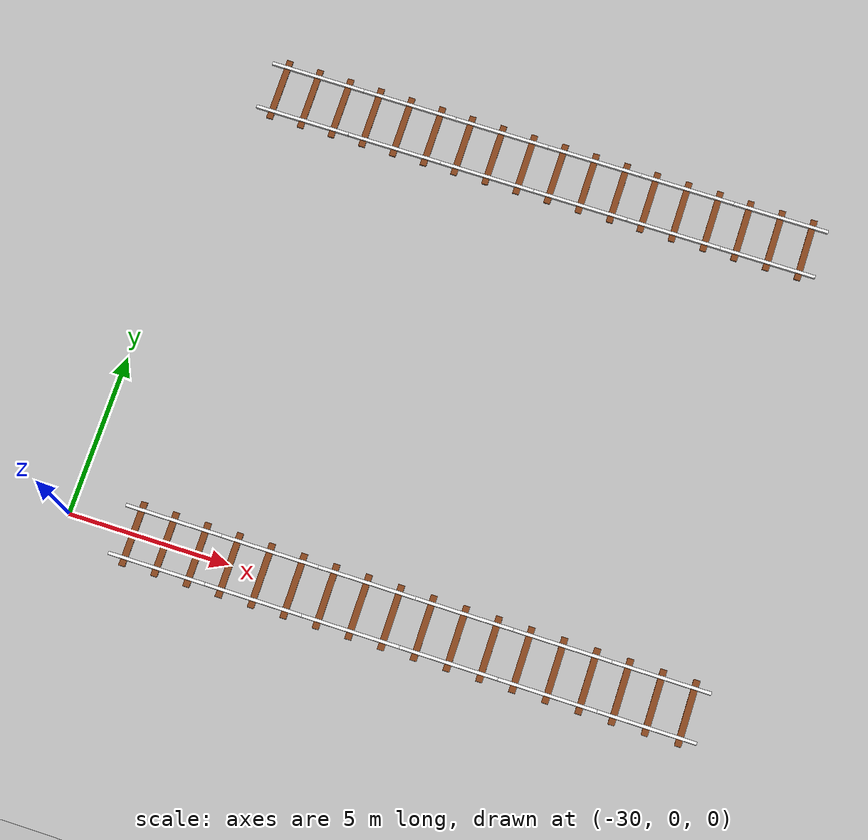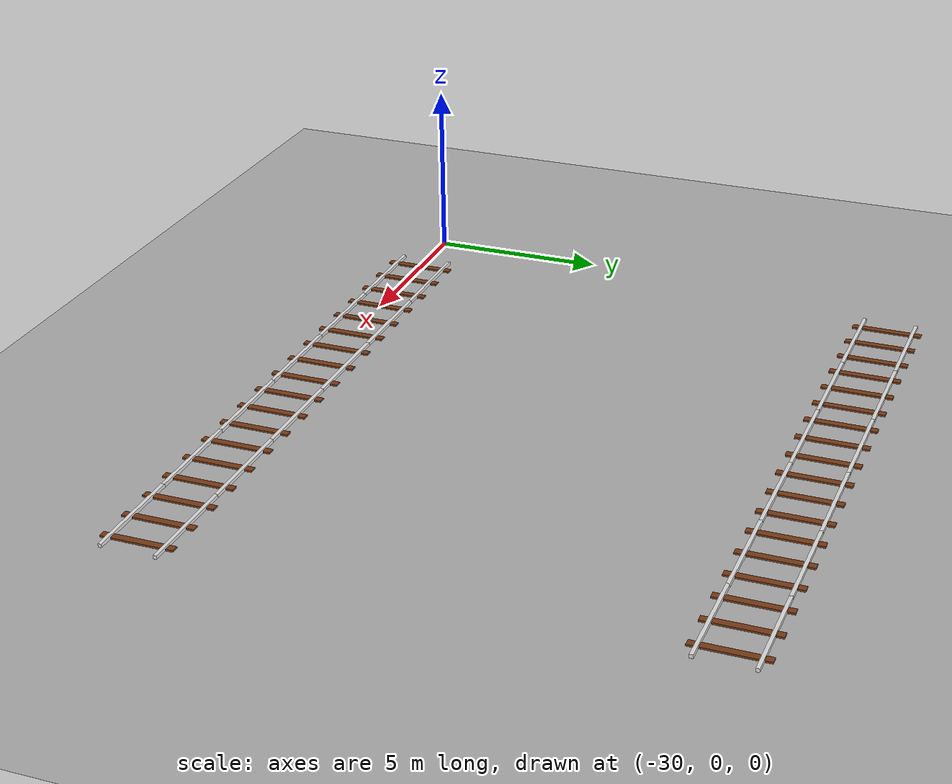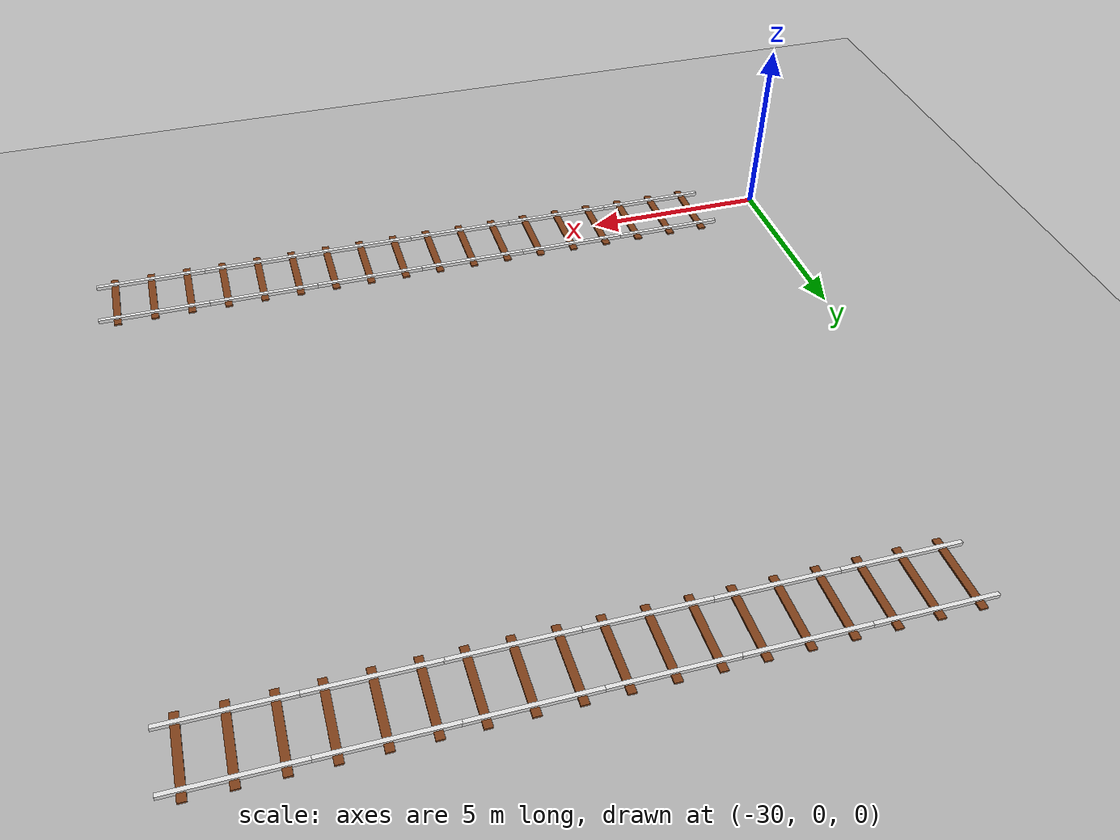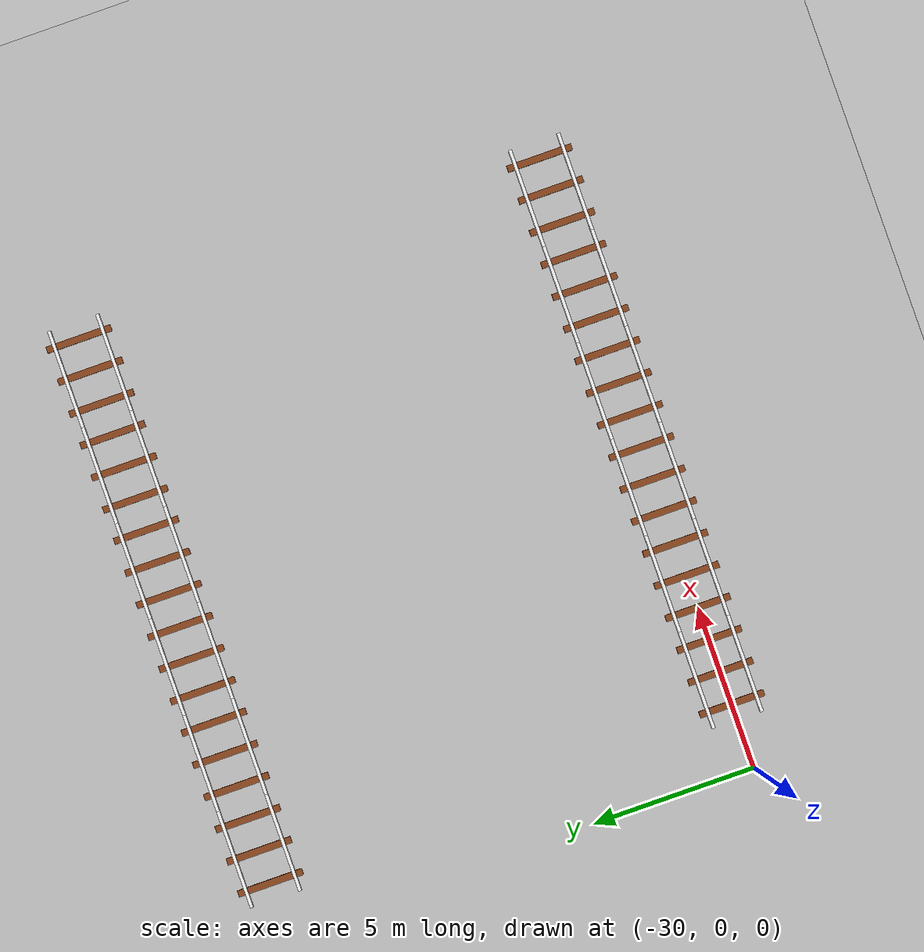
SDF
<sdf version="1.10">
 <world name="myworld">
  <model name="rail-5">
   <static>true</static>
   <pose>-12 0 0 0 0 0</pose>
   <link name="rail_link">
    <visual name="rail_left">
     <pose>0 0.75 0.050000000000000003 0 0 0</pose>
     <geometry><box><size>3 0.10000000000000001 0.10000000000000001</size></box></geometry>
     <material>
      <ambient>0.800000012 0.800000012 0.800000012 1</ambient>
      <diffuse>0.899999976 0.899999976 0.899999976 1</diffuse>
     </material>
    </visual>
    <visual name="rail_right">
     <pose>0 -0.75 0.050000000000000003 0 0 0</pose>
     <geometry><box><size>3 0.10000000000000001 0.10000000000000001</size></box></geometry>
     <material>
      <ambient>0.800000012 0.800000012 0.800000012 1</ambient>
      <diffuse>0.899999976 0.899999976 0.899999976 1</diffuse>
     </material>
    </visual>
    <visual name="traverse_1">
     <pose>1 0 0.025000000000000001 0 0 0</pose>
     <geometry><box><size>0.20000000000000001 2 0.050000000000000003</size></box></geometry>
     <material>
      <ambient>0.400000006 0.200000003 0.100000001 1</ambient>
      <diffuse>0.5 0.25 0.100000001 1</diffuse>
     </material>
    </visual>
    <visual name="traverse_2">
     <pose>0 0 0.025000000000000001 0 0 0</pose>
     <geometry><box><size>0.20000000000000001 2 0.050000000000000003</size></box></geometry>
     <material>
      <ambient>0.400000006 0.200000003 0.100000001 1</ambient>
      <diffuse>0.5 0.25 0.100000001 1</diffuse>
     </material>
    </visual>
    <visual name="traverse_3">
     <pose>-1 0 0.025000000000000001 0 0 0</pose>
     <geometry><box><size>0.20000000000000001 2 0.050000000000000003</size></box></geometry>
     <material>
      <ambient>0.400000006 0.200000003 0.100000001 1</ambient>
      <diffuse>0.5 0.25 0.100000001 1</diffuse>
     </material>
    </visual>
    <inertial>
     <mass>1</mass>
     <inertia><ixx>1</ixx><ixy>0</ixy><ixz>0</ixz><iyy>1</iyy><iyz>0</iyz><izz>1</izz></inertia>
    </inertial>
   </link>
  </model>
  <model name="rail-6">
   <static>true</static>
   <pose>-15 0 0 0 0 0</pose>
   <link name="rail_link">
    <visual name="rail_left">
     <pose>0 0.75 0.050000000000000003 0 0 0</pose>
     <geometry><box><size>3 0.10000000000000001 0.10000000000000001</size></box></geometry>
     <material>
      <ambient>0.800000012 0.800000012 0.800000012 1</ambient>
      <diffuse>0.899999976 0.899999976 0.899999976 1</diffuse>
     </material>
    </visual>
    <visual name="rail_right">
     <pose>0 -0.75 0.050000000000000003 0 0 0</pose>
     <geometry><box><size>3 0.10000000000000001 0.10000000000000001</size></box></geometry>
     <material>
      <ambient>0.800000012 0.800000012 0.800000012 1</ambient>
      <diffuse>0.899999976 0.899999976 0.899999976 1</diffuse>
     </material>
    </visual>
    <visual name="traverse_1">
     <pose>1 0 0.025000000000000001 0 0 0</pose>
     <geometry><box><size>0.20000000000000001 2 0.050000000000000003</size></box></geometry>
     <material>
      <ambient>0.400000006 0.200000003 0.100000001 1</ambient>
      <diffuse>0.5 0.25 0.100000001 1</diffuse>
     </material>
    </visual>
    <visual name="traverse_2">
     <pose>0 0 0.025000000000000001 0 0 0</pose>
     <geometry><box><size>0.20000000000000001 2 0.050000000000000003</size></box></geometry>
     <material>
      <ambient>0.400000006 0.200000003 0.100000001 1</ambient>
      <diffuse>0.5 0.25 0.100000001 1</diffuse>
     </material>
    </visual>
    <visual name="traverse_3">
     <pose>-1 0 0.025000000000000001 0 0 0</pose>
     <geometry><box><size>0.20000000000000001 2 0.050000000000000003</size></box></geometry>
     <material>
      <ambient>0.400000006 0.200000003 0.100000001 1</ambient>
      <diffuse>0.5 0.25 0.100000001 1</diffuse>
     </material>
    </visual>
    <inertial>
     <mass>1</mass>
     <inertia><ixx>1</ixx><ixy>0</ixy><ixz>0</ixz><iyy>1</iyy><iyz>0</iyz><izz>1</izz></inertia>
    </inertial>
   </link>
  </model>
  <model name="rail-7">
   <static>true</static>
   <pose>-18 0 0 0 0 0</pose>
   <link name="rail_link">
    <visual name="rail_left">
     <pose>0 0.75 0.050000000000000003 0 0 0</pose>
     <geometry><box><size>3 0.10000000000000001 0.10000000000000001</size></box></geometry>
     <material>
      <ambient>0.800000012 0.800000012 0.800000012 1</ambient>
      <diffuse>0.899999976 0.899999976 0.899999976 1</diffuse>
     </material>
    </visual>
    <visual name="rail_right">
     <pose>0 -0.75 0.050000000000000003 0 0 0</pose>
     <geometry><box><size>3 0.10000000000000001 0.10000000000000001</size></box></geometry>
     <material>
      <ambient>0.800000012 0.800000012 0.800000012 1</ambient>
      <diffuse>0.899999976 0.899999976 0.899999976 1</diffuse>
     </material>
    </visual>
    <visual name="traverse_1">
     <pose>1 0 0.025000000000000001 0 0 0</pose>
     <geometry><box><size>0.20000000000000001 2 0.050000000000000003</size></box></geometry>
     <material>
      <ambient>0.400000006 0.200000003 0.100000001 1</ambient>
      <diffuse>0.5 0.25 0.100000001 1</diffuse>
     </material>
    </visual>
    <visual name="traverse_2">
     <pose>0 0 0.025000000000000001 0 0 0</pose>
     <geometry><box><size>0.20000000000000001 2 0.050000000000000003</size></box></geometry>
     <material>
      <ambient>0.400000006 0.200000003 0.100000001 1</ambient>
      <diffuse>0.5 0.25 0.100000001 1</diffuse>
     </material>
    </visual>
    <visual name="traverse_3">
     <pose>-1 0 0.025000000000000001 0 0 0</pose>
     <geometry><box><size>0.20000000000000001 2 0.050000000000000003</size></box></geometry>
     <material>
      <ambient>0.400000006 0.200000003 0.100000001 1</ambient>
      <diffuse>0.5 0.25 0.100000001 1</diffuse>
     </material>
    </visual>
    <inertial>
     <mass>1</mass>
     <inertia><ixx>1</ixx><ixy>0</ixy><ixz>0</ixz><iyy>1</iyy><iyz>0</iyz><izz>1</izz></inertia>
    </inertial>
   </link>
  </model>
  <model name="rail-8">
   <static>true</static>
   <pose>-21 0 0 0 0 0</pose>
   <link name="rail_link">
    <visual name="rail_left">
     <pose>0 0.75 0.050000000000000003 0 0 0</pose>
     <geometry><box><size>3 0.10000000000000001 0.10000000000000001</size></box></geometry>
     <material>
      <ambient>0.800000012 0.800000012 0.800000012 1</ambient>
      <diffuse>0.899999976 0.899999976 0.899999976 1</diffuse>
     </material>
    </visual>
    <visual name="rail_right">
     <pose>0 -0.75 0.050000000000000003 0 0 0</pose>
     <geometry><box><size>3 0.10000000000000001 0.10000000000000001</size></box></geometry>
     <material>
      <ambient>0.800000012 0.800000012 0.800000012 1</ambient>
      <diffuse>0.899999976 0.899999976 0.899999976 1</diffuse>
     </material>
    </visual>
    <visual name="traverse_1">
     <pose>1 0 0.025000000000000001 0 0 0</pose>
     <geometry><box><size>0.20000000000000001 2 0.050000000000000003</size></box></geometry>
     <material>
      <ambient>0.400000006 0.200000003 0.100000001 1</ambient>
      <diffuse>0.5 0.25 0.100000001 1</diffuse>
     </material>
    </visual>
    <visual name="traverse_2">
     <pose>0 0 0.025000000000000001 0 0 0</pose>
     <geometry><box><size>0.20000000000000001 2 0.050000000000000003</size></box></geometry>
     <material>
      <ambient>0.400000006 0.200000003 0.100000001 1</ambient>
      <diffuse>0.5 0.25 0.100000001 1</diffuse>
     </material>
    </visual>
    <visual name="traverse_3">
     <pose>-1 0 0.025000000000000001 0 0 0</pose>
     <geometry><box><size>0.20000000000000001 2 0.050000000000000003</size></box></geometry>
     <material>
      <ambient>0.400000006 0.200000003 0.100000001 1</ambient>
      <diffuse>0.5 0.25 0.100000001 1</diffuse>
     </material>
    </visual>
    <inertial>
     <mass>1</mass>
     <inertia><ixx>1</ixx><ixy>0</ixy><ixz>0</ixz><iyy>1</iyy><iyz>0</iyz><izz>1</izz></inertia>
    </inertial>
   </link>
  </model>
  <model name="rail-9">
   <static>true</static>
   <pose>-24 0 0 0 0 0</pose>
   <link name="rail_link">
    <visual name="rail_left">
     <pose>0 0.75 0.050000000000000003 0 0 0</pose>
     <geometry><box><size>3 0.10000000000000001 0.10000000000000001</size></box></geometry>
     <material>
      <ambient>0.800000012 0.800000012 0.800000012 1</ambient>
      <diffuse>0.899999976 0.899999976 0.899999976 1</diffuse>
     </material>
    </visual>
    <visual name="rail_right">
     <pose>0 -0.75 0.050000000000000003 0 0 0</pose>
     <geometry><box><size>3 0.10000000000000001 0.10000000000000001</size></box></geometry>
     <material>
      <ambient>0.800000012 0.800000012 0.800000012 1</ambient>
      <diffuse>0.899999976 0.899999976 0.899999976 1</diffuse>
     </material>
    </visual>
    <visual name="traverse_1">
     <pose>1 0 0.025000000000000001 0 0 0</pose>
     <geometry><box><size>0.20000000000000001 2 0.050000000000000003</size></box></geometry>
     <material>
      <ambient>0.400000006 0.200000003 0.100000001 1</ambient>
      <diffuse>0.5 0.25 0.100000001 1</diffuse>
     </material>
    </visual>
    <visual name="traverse_2">
     <pose>0 0 0.025000000000000001 0 0 0</pose>
     <geometry><box><size>0.20000000000000001 2 0.050000000000000003</size></box></geometry>
     <material>
      <ambient>0.400000006 0.200000003 0.100000001 1</ambient>
      <diffuse>0.5 0.25 0.100000001 1</diffuse>
     </material>
    </visual>
    <visual name="traverse_3">
     <pose>-1 0 0.025000000000000001 0 0 0</pose>
     <geometry><box><size>0.20000000000000001 2 0.050000000000000003</size></box></geometry>
     <material>
      <ambient>0.400000006 0.200000003 0.100000001 1</ambient>
      <diffuse>0.5 0.25 0.100000001 1</diffuse>
     </material>
    </visual>
    <inertial>
     <mass>1</mass>
     <inertia><ixx>1</ixx><ixy>0</ixy><ixz>0</ixz><iyy>1</iyy><iyz>0</iyz><izz>1</izz></inertia>
    </inertial>
   </link>
  </model>
  <model name="rail-10">
   <static>true</static>
   <pose>-27 0 0 0 0 0</pose>
   <link name="rail_link">
    <visual name="rail_left">
     <pose>0 0.75 0.050000000000000003 0 0 0</pose>
     <geometry><box><size>3 0.10000000000000001 0.10000000000000001</size></box></geometry>
     <material>
      <ambient>0.800000012 0.800000012 0.800000012 1</ambient>
      <diffuse>0.899999976 0.899999976 0.899999976 1</diffuse>
     </material>
    </visual>
    <visual name="rail_right">
     <pose>0 -0.75 0.050000000000000003 0 0 0</pose>
     <geometry><box><size>3 0.10000000000000001 0.10000000000000001</size></box></geometry>
     <material>
      <ambient>0.800000012 0.800000012 0.800000012 1</ambient>
      <diffuse>0.899999976 0.899999976 0.899999976 1</diffuse>
     </material>
    </visual>
    <visual name="traverse_1">
     <pose>1 0 0.025000000000000001 0 0 0</pose>
     <geometry><box><size>0.20000000000000001 2 0.050000000000000003</size></box></geometry>
     <material>
      <ambient>0.400000006 0.200000003 0.100000001 1</ambient>
      <diffuse>0.5 0.25 0.100000001 1</diffuse>
     </material>
    </visual>
    <visual name="traverse_2">
     <pose>0 0 0.025000000000000001 0 0 0</pose>
     <geometry><box><size>0.20000000000000001 2 0.050000000000000003</size></box></geometry>
     <material>
      <ambient>0.400000006 0.200000003 0.100000001 1</ambient>
      <diffuse>0.5 0.25 0.100000001 1</diffuse>
     </material>
    </visual>
    <visual name="traverse_3">
     <pose>-1 0 0.025000000000000001 0 0 0</pose>
     <geometry><box><size>0.20000000000000001 2 0.050000000000000003</size></box></geometry>
     <material>
      <ambient>0.400000006 0.200000003 0.100000001 1</ambient>
      <diffuse>0.5 0.25 0.100000001 1</diffuse>
     </material>
    </visual>
    <inertial>
     <mass>1</mass>
     <inertia><ixx>1</ixx><ixy>0</ixy><ixz>0</ixz><iyy>1</iyy><iyz>0</iyz><izz>1</izz></inertia>
    </inertial>
   </link>
  </model>
  <model name="ground_plane">
   <static>true</static>
   <link name="link">
    <collision name="collision">
     <geometry><plane><normal>0 0 1</normal><size>1000 1000</size></plane></geometry>
    </collision>
    <visual name="visual">
     <geometry><plane><normal>0 0 1</normal><size>1000 1000</size></plane></geometry>
     <material>
      <ambient>0.699999988 0.699999988 0.699999988 1</ambient>
      <diffuse>0.699999988 0.699999988 0.699999988 1</diffuse>
     </material>
    </visual>
    <inertial>
     <mass>1</mass>
     <inertia><ixx>1</ixx><ixy>0</ixy><ixz>0</ixz><iyy>1</iyy><iyz>0</iyz><izz>1</izz></inertia>
    </inertial>
   </link>
  </model>
  <model name="rail1_7_2_7">
   <static>true</static>
   <pose>-12.520799999999999 14.5263799999999996 0 0 0 0</pose>
   <link name="rail_link">
    <visual name="rail_left">
     <pose>0 0.75 0.050000000000000003 0 0 0</pose>
     <geometry><box><size>3 0.10000000000000001 0.10000000000000001</size></box></geometry>
     <material>
      <ambient>0.800000012 0.800000012 0.800000012 1</ambient>
      <diffuse>0.899999976 0.899999976 0.899999976 1</diffuse>
     </material>
    </visual>
    <visual name="rail_right">
     <pose>0 -0.75 0.050000000000000003 0 0 0</pose>
     <geometry><box><size>3 0.10000000000000001 0.10000000000000001</size></box></geometry>
     <material>
      <ambient>0.800000012 0.800000012 0.800000012 1</ambient>
      <diffuse>0.899999976 0.899999976 0.899999976 1</diffuse>
     </material>
    </visual>
    <visual name="traverse_1">
     <pose>1 0 0.025000000000000001 0 0 0</pose>
     <geometry><box><size>0.20000000000000001 2 0.050000000000000003</size></box></geometry>
     <material>
      <ambient>0.400000006 0.200000003 0.100000001 1</ambient>
      <diffuse>0.5 0.25 0.100000001 1</diffuse>
     </material>
    </visual>
    <visual name="traverse_2">
     <pose>0 0 0.025000000000000001 0 0 0</pose>
     <geometry><box><size>0.20000000000000001 2 0.050000000000000003</size></box></geometry>
     <material>
      <ambient>0.400000006 0.200000003 0.100000001 1</ambient>
      <diffuse>0.5 0.25 0.100000001 1</diffuse>
     </material>
    </visual>
    <visual name="traverse_3">
     <pose>-1 0 0.025000000000000001 0 0 0</pose>
     <geometry><box><size>0.20000000000000001 2 0.050000000000000003</size></box></geometry>
     <material>
      <ambient>0.400000006 0.200000003 0.100000001 1</ambient>
      <diffuse>0.5 0.25 0.100000001 1</diffuse>
     </material>
    </visual>
   </link>
  </model>
  <model name="rail1_7_2_8">
   <static>true</static>
   <pose>-15.5029 14.5277099999999999 0 0 0 0</pose>
   <link name="rail_link">
    <visual name="rail_left">
     <pose>0 0.75 0.050000000000000003 0 0 0</pose>
     <geometry><box><size>3 0.10000000000000001 0.10000000000000001</size></box></geometry>
     <material>
      <ambient>0.800000012 0.800000012 0.800000012 1</ambient>
      <diffuse>0.899999976 0.899999976 0.899999976 1</diffuse>
     </material>
    </visual>
    <visual name="rail_right">
     <pose>0 -0.75 0.050000000000000003 0 0 0</pose>
     <geometry><box><size>3 0.10000000000000001 0.10000000000000001</size></box></geometry>
     <material>
      <ambient>0.800000012 0.800000012 0.800000012 1</ambient>
      <diffuse>0.899999976 0.899999976 0.899999976 1</diffuse>
     </material>
    </visual>
    <visual name="traverse_1">
     <pose>1 0 0.025000000000000001 0 0 0</pose>
     <geometry><box><size>0.20000000000000001 2 0.050000000000000003</size></box></geometry>
     <material>
      <ambient>0.400000006 0.200000003 0.100000001 1</ambient>
      <diffuse>0.5 0.25 0.100000001 1</diffuse>
     </material>
    </visual>
    <visual name="traverse_2">
     <pose>0 0 0.025000000000000001 0 0 0</pose>
     <geometry><box><size>0.20000000000000001 2 0.050000000000000003</size></box></geometry>
     <material>
      <ambient>0.400000006 0.200000003 0.100000001 1</ambient>
      <diffuse>0.5 0.25 0.100000001 1</diffuse>
     </material>
    </visual>
    <visual name="traverse_3">
     <pose>-1 0 0.025000000000000001 0 0 0</pose>
     <geometry><box><size>0.20000000000000001 2 0.050000000000000003</size></box></geometry>
     <material>
      <ambient>0.400000006 0.200000003 0.100000001 1</ambient>
      <diffuse>0.5 0.25 0.100000001 1</diffuse>
     </material>
    </visual>
   </link>
  </model>
  <model name="rail1_7_2_9">
   <static>true</static>
   <pose>-18.4742 14.5285200000000003 0 0 0 0</pose>
   <link name="rail_link">
    <visual name="rail_left">
     <pose>0 0.75 0.050000000000000003 0 0 0</pose>
     <geometry><box><size>3 0.10000000000000001 0.10000000000000001</size></box></geometry>
     <material>
      <ambient>0.800000012 0.800000012 0.800000012 1</ambient>
      <diffuse>0.899999976 0.899999976 0.899999976 1</diffuse>
     </material>
    </visual>
    <visual name="rail_right">
     <pose>0 -0.75 0.050000000000000003 0 0 0</pose>
     <geometry><box><size>3 0.10000000000000001 0.10000000000000001</size></box></geometry>
     <material>
      <ambient>0.800000012 0.800000012 0.800000012 1</ambient>
      <diffuse>0.899999976 0.899999976 0.899999976 1</diffuse>
     </material>
    </visual>
    <visual name="traverse_1">
     <pose>1 0 0.025000000000000001 0 0 0</pose>
     <geometry><box><size>0.20000000000000001 2 0.050000000000000003</size></box></geometry>
     <material>
      <ambient>0.400000006 0.200000003 0.100000001 1</ambient>
      <diffuse>0.5 0.25 0.100000001 1</diffuse>
     </material>
    </visual>
    <visual name="traverse_2">
     <pose>0 0 0.025000000000000001 0 0 0</pose>
     <geometry><box><size>0.20000000000000001 2 0.050000000000000003</size></box></geometry>
     <material>
      <ambient>0.400000006 0.200000003 0.100000001 1</ambient>
      <diffuse>0.5 0.25 0.100000001 1</diffuse>
     </material>
    </visual>
    <visual name="traverse_3">
     <pose>-1 0 0.025000000000000001 0 0 0</pose>
     <geometry><box><size>0.20000000000000001 2 0.050000000000000003</size></box></geometry>
     <material>
      <ambient>0.400000006 0.200000003 0.100000001 1</ambient>
      <diffuse>0.5 0.25 0.100000001 1</diffuse>
     </material>
    </visual>
   </link>
  </model>
  <model name="rail1_7_2_10">
   <static>true</static>
   <pose>-21.473600000000001 14.5276100000000001 0 0 0 0</pose>
   <link name="rail_link">
    <visual name="rail_left">
     <pose>0 0.75 0.050000000000000003 0 0 0</pose>
     <geometry><box><size>3 0.10000000000000001 0.10000000000000001</size></box></geometry>
     <material>
      <ambient>0.800000012 0.800000012 0.800000012 1</ambient>
      <diffuse>0.899999976 0.899999976 0.899999976 1</diffuse>
     </material>
    </visual>
    <visual name="rail_right">
     <pose>0 -0.75 0.050000000000000003 0 0 0</pose>
     <geometry><box><size>3 0.10000000000000001 0.10000000000000001</size></box></geometry>
     <material>
      <ambient>0.800000012 0.800000012 0.800000012 1</ambient>
      <diffuse>0.899999976 0.899999976 0.899999976 1</diffuse>
     </material>
    </visual>
    <visual name="traverse_1">
     <pose>1 0 0.025000000000000001 0 0 0</pose>
     <geometry><box><size>0.20000000000000001 2 0.050000000000000003</size></box></geometry>
     <material>
      <ambient>0.400000006 0.200000003 0.100000001 1</ambient>
      <diffuse>0.5 0.25 0.100000001 1</diffuse>
     </material>
    </visual>
    <visual name="traverse_2">
     <pose>0 0 0.025000000000000001 0 0 0</pose>
     <geometry><box><size>0.20000000000000001 2 0.050000000000000003</size></box></geometry>
     <material>
      <ambient>0.400000006 0.200000003 0.100000001 1</ambient>
      <diffuse>0.5 0.25 0.100000001 1</diffuse>
     </material>
    </visual>
    <visual name="traverse_3">
     <pose>-1 0 0.025000000000000001 0 0 0</pose>
     <geometry><box><size>0.20000000000000001 2 0.050000000000000003</size></box></geometry>
     <material>
      <ambient>0.400000006 0.200000003 0.100000001 1</ambient>
      <diffuse>0.5 0.25 0.100000001 1</diffuse>
     </material>
    </visual>
   </link>
  </model>
  <model name="rail1_7_2_11">
   <static>true</static>
   <pose>-24.4589 14.52935 0 0 0 0</pose>
   <link name="rail_link">
    <visual name="rail_left">
     <pose>0 0.75 0.050000000000000003 0 0 0</pose>
     <geometry><box><size>3 0.10000000000000001 0.10000000000000001</size></box></geometry>
     <material>
      <ambient>0.800000012 0.800000012 0.800000012 1</ambient>
      <diffuse>0.899999976 0.899999976 0.899999976 1</diffuse>
     </material>
    </visual>
    <visual name="rail_right">
     <pose>0 -0.75 0.050000000000000003 0 0 0</pose>
     <geometry><box><size>3 0.10000000000000001 0.10000000000000001</size></box></geometry>
     <material>
      <ambient>0.800000012 0.800000012 0.800000012 1</ambient>
      <diffuse>0.899999976 0.899999976 0.899999976 1</diffuse>
     </material>
    </visual>
    <visual name="traverse_1">
     <pose>1 0 0.025000000000000001 0 0 0</pose>
     <geometry><box><size>0.20000000000000001 2 0.050000000000000003</size></box></geometry>
     <material>
      <ambient>0.400000006 0.200000003 0.100000001 1</ambient>
      <diffuse>0.5 0.25 0.100000001 1</diffuse>
     </material>
    </visual>
    <visual name="traverse_2">
     <pose>0 0 0.025000000000000001 0 0 0</pose>
     <geometry><box><size>0.20000000000000001 2 0.050000000000000003</size></box></geometry>
     <material>
      <ambient>0.400000006 0.200000003 0.100000001 1</ambient>
      <diffuse>0.5 0.25 0.100000001 1</diffuse>
     </material>
    </visual>
    <visual name="traverse_3">
     <pose>-1 0 0.025000000000000001 0 0 0</pose>
     <geometry><box><size>0.20000000000000001 2 0.050000000000000003</size></box></geometry>
     <material>
      <ambient>0.400000006 0.200000003 0.100000001 1</ambient>
      <diffuse>0.5 0.25 0.100000001 1</diffuse>
     </material>
    </visual>
   </link>
  </model>
  <model name="rail1_7_2_12">
   <static>true</static>
   <pose>-27.4604 14.5298499999999997 0 0 0 0</pose>
   <link name="rail_link">
    <visual name="rail_left">
     <pose>0 0.75 0.050000000000000003 0 0 0</pose>
     <geometry><box><size>3 0.10000000000000001 0.10000000000000001</size></box></geometry>
     <material>
      <ambient>0.800000012 0.800000012 0.800000012 1</ambient>
      <diffuse>0.899999976 0.899999976 0.899999976 1</diffuse>
     </material>
    </visual>
    <visual name="rail_right">
     <pose>0 -0.75 0.050000000000000003 0 0 0</pose>
     <geometry><box><size>3 0.10000000000000001 0.10000000000000001</size></box></geometry>
     <material>
      <ambient>0.800000012 0.800000012 0.800000012 1</ambient>
      <diffuse>0.899999976 0.899999976 0.899999976 1</diffuse>
     </material>
    </visual>
    <visual name="traverse_1">
     <pose>1 0 0.025000000000000001 0 0 0</pose>
     <geometry><box><size>0.20000000000000001 2 0.050000000000000003</size></box></geometry>
     <material>
      <ambient>0.400000006 0.200000003 0.100000001 1</ambient>
      <diffuse>0.5 0.25 0.100000001 1</diffuse>
     </material>
    </visual>
    <visual name="traverse_2">
     <pose>0 0 0.025000000000000001 0 0 0</pose>
     <geometry><box><size>0.20000000000000001 2 0.050000000000000003</size></box></geometry>
     <material>
      <ambient>0.400000006 0.200000003 0.100000001 1</ambient>
      <diffuse>0.5 0.25 0.100000001 1</diffuse>
     </material>
    </visual>
    <visual name="traverse_3">
     <pose>-1 0 0.025000000000000001 0 0 0</pose>
     <geometry><box><size>0.20000000000000001 2 0.050000000000000003</size></box></geometry>
     <material>
      <ambient>0.400000006 0.200000003 0.100000001 1</ambient>
      <diffuse>0.5 0.25 0.100000001 1</diffuse>
     </material>
    </visual>
   </link>
  </model>
 </world>
</sdf>
